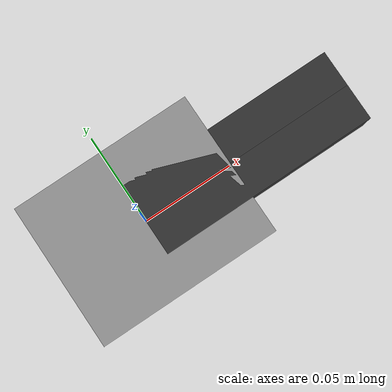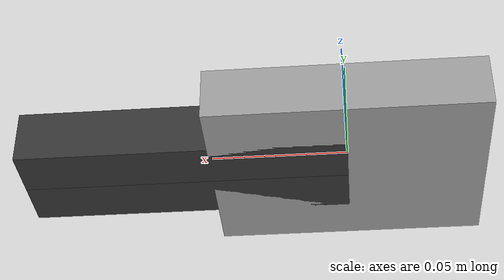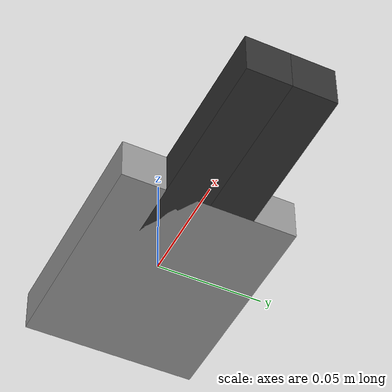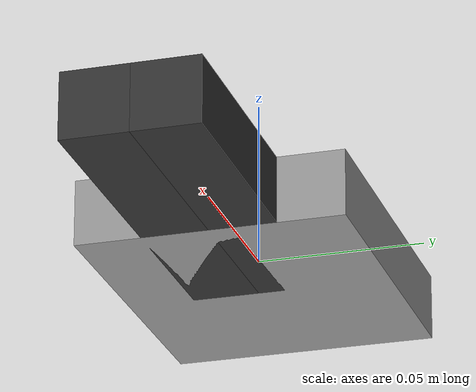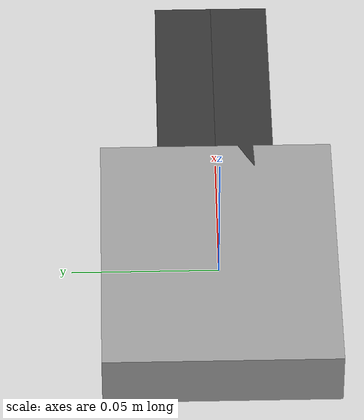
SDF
<?xml version="1.0"?>
<sdf version="1.10">
  <model name="rg2">
    <pose>0 0 0 0 0 0</pose>
    <static>false</static>
    <self_collide>false</self_collide>
    <allow_auto_disable>true</allow_auto_disable>

    <!-- ===================== Links ===================== -->

    <!-- Base plate that mounts to UR10 tool flange -->
    <link name="rg2_base">
      <!-- Approx 0.10 x 0.08 x 0.02 m aluminum block -->
      <inertial>
        <mass>0.6</mass>
        <!-- Box inertia (rough) -->
        <inertia>
          <ixx>0.00032</ixx>
          <iyy>0.00020</iyy>
          <izz>0.00021</izz>
          <ixy>0</ixy><ixz>0</ixz><iyz>0</iyz>
        </inertia>
      </inertial>
      <collision name="rg2_base_col">
        <geometry>
          <box><size>0.10 0.08 0.02</size></box>
        </geometry>
        <surface><contact><ode/></contact></surface>
      </collision>
      <visual name="rg2_base_vis">
        <geometry>
          <box><size>0.10 0.08 0.02</size></box>
        </geometry>
        <material>
          <ambient>0.6 0.6 0.6 1</ambient>
          <diffuse>0.6 0.6 0.6 1</diffuse>
        </material>
      </visual>
    </link>

    <!-- Left finger body -->
    <link name="finger_left">
      <!-- Finger: 0.12 x 0.02 x 0.02 m (length along X), initial pose offset +Y -->
      <pose>0.06 0.01 0 0 0 0</pose>
      <inertial>
        <mass>0.15</mass>
        <inertia>
          <ixx>0.000025</ixx>
          <iyy>0.000012</iyy>
          <izz>0.000030</izz>
          <ixy>0</ixy><ixz>0</ixz><iyz>0</iyz>
        </inertia>
      </inertial>
      <collision name="finger_left_col">
        <geometry>
          <box><size>0.12 0.02 0.02</size></box>
        </geometry>
      </collision>
      <visual name="finger_left_vis">
        <geometry>
          <box><size>0.12 0.02 0.02</size></box>
        </geometry>
        <material>
          <ambient>0.2 0.2 0.2 1</ambient>
          <diffuse>0.2 0.2 0.2 1</diffuse>
        </material>
      </visual>
    </link>

    <!-- Right finger body -->
    <link name="finger_right">
      <!-- Initial pose offset -Y -->
      <pose>0.06 -0.01 0 0 0 0</pose>
      <inertial>
        <mass>0.15</mass>
        <inertia>
          <ixx>0.000025</ixx>
          <iyy>0.000012</iyy>
          <izz>0.000030</izz>
          <ixy>0</ixy><ixz>0</ixz><iyz>0</iyz>
        </inertia>
      </inertial>
      <collision name="finger_right_col">
        <geometry>
          <box><size>0.12 0.02 0.02</size></box>
        </geometry>
      </collision>
      <visual name="finger_right_vis">
        <geometry>
          <box><size>0.12 0.02 0.02</size></box>
        </geometry>
        <material>
          <ambient>0.2 0.2 0.2 1</ambient>
          <diffuse>0.2 0.2 0.2 1</diffuse>
        </material>
      </visual>
    </link>

    <!-- ===================== Joints ===================== -->

    <!-- Left finger prismatic joint: slides along +Y (open increases -> finger moves outwards) -->
    <joint name="finger_left_joint" type="prismatic">
      <parent>rg2_base</parent>
      <child>finger_left</child>
      <pose>0.05 0 0 0 0 0</pose> <!-- joint origin near base front -->
      <axis>
        <xyz>0 1 0</xyz>
        <limit>
          <!-- 0.00 = fully closed, 0.04 = finger left out by 4 cm -->
          <lower>0.0</lower>
          <upper>0.04</upper>
          <effort>200</effort>
          <velocity>1.0</velocity>
        </limit>
        <dynamics>
          <damping>2.0</damping>
          <friction>0.2</friction>
        </dynamics>
      </axis>
    </joint>

    <!-- Right finger prismatic joint: slides along -Y (open increases magnitude) -->
    <joint name="finger_right_joint" type="prismatic">
      <parent>rg2_base</parent>
      <child>finger_right</child>
      <pose>0.05 0 0 0 0 0</pose>
      <axis>
        <xyz>0 -1 0</xyz>
        <limit>
          <lower>0.0</lower>
          <upper>0.04</upper>
          <effort>200</effort>
          <velocity>1.0</velocity>
        </limit>
        <dynamics>
          <damping>2.0</damping>
          <friction>0.2</friction>
        </dynamics>
      </axis>
    </joint>

    <!-- ===================== Controllers ===================== -->

    <!-- Command left finger position: /model/rg2/joint/finger_left_joint/0/cmd_pos -->
    <plugin name="gz::sim::systems::JointPositionController" filename="gz-sim-joint-position-controller-system">
      <joint_name>finger_left_joint</joint_name>
      <p_gain>300.0</p_gain>
      <d_gain>8.0</d_gain>
    </plugin>

    <!-- Command right finger position: /model/rg2/joint/finger_right_joint/0/cmd_pos -->
    <plugin name="gz::sim::systems::JointPositionController" filename="gz-sim-joint-position-controller-system">
      <joint_name>finger_right_joint</joint_name>
      <p_gain>300.0</p_gain>
      <d_gain>8.0</d_gain>
    </plugin>

    <!-- Optional: publish joint states -->

  </model>
</sdf>
